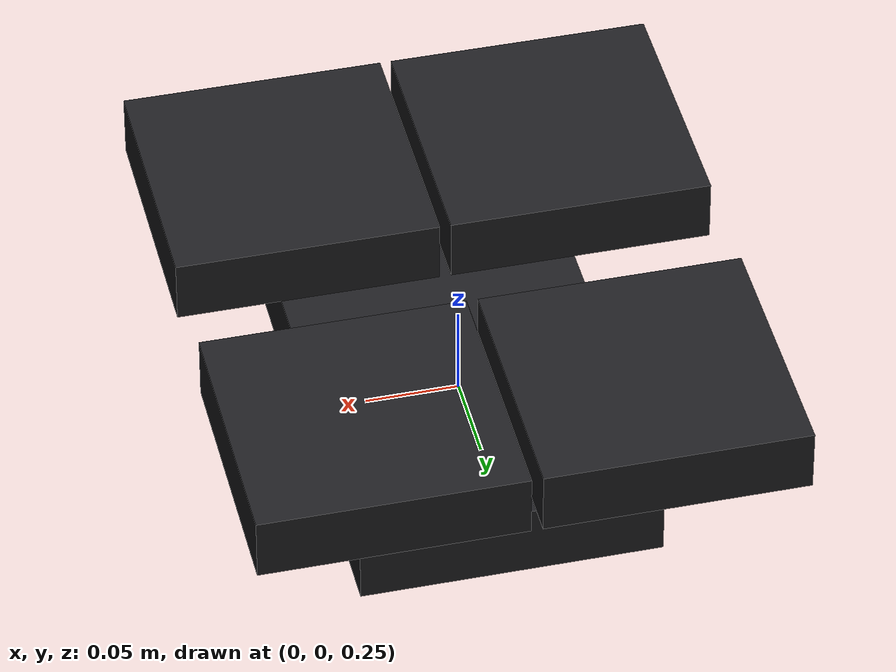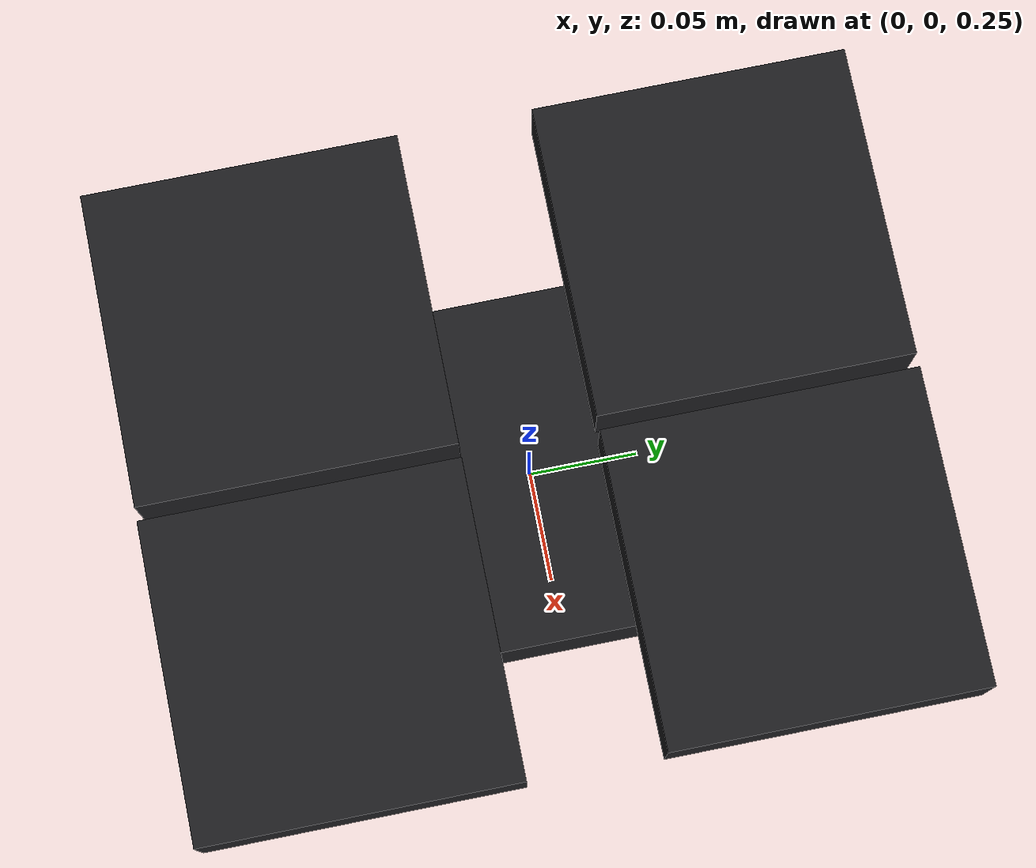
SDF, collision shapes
<?xml version="1.0" encoding="UTF-8"?>
<sdf version='1.9'>
  <!-- QAV-PRO Whoop 5": rectangular (not square-X). Motor plate 340 x 285 mm (Y x X). -->
  <!-- Ducts/props from model://kopis_x8_base, single deck. Body FLU: +X fwd, +Y left. -->
  <!-- Rotors at FLU (±0.073, ±0.100); CA FRD PY = -y. Order: 0=FR 1=RL 2=FL 3=RR. -->
  <model name='x4_base'>
    <pose>0 0 .24 0 0 0</pose>
    <self_collide>false</self_collide>
    <static>false</static>
    <link name="base_link">
      <inertial>
        <mass>1.0</mass>
        <inertia>
          <ixx>0.012</ixx>
          <ixy>0</ixy>
          <ixz>0</ixz>
          <iyy>0.007</iyy>
          <iyz>0</iyz>
          <izz>0.016</izz>
        </inertia>
      </inertial>
      <gravity>true</gravity>
      <velocity_decay/>
      <collision name="base_link_collision">
        <pose>0 0 .007 0 0 0</pose>
        <geometry>
          <box>
            <size>0.16 0.24 0.04</size>
          </box>
        </geometry>
        <surface>
          <contact>
            <ode>
              <min_depth>0.001</min_depth>
              <max_vel>0</max_vel>
            </ode>
          </contact>
          <friction>
            <ode/>
          </friction>
        </surface>
      </collision>
      <!-- Center bay: wider in Y (camera / Z-1 Mini). Inner opening ~0.12 x 0.18. -->
      <visual name="bay_front_rail">
        <pose>0.065 0 0.025 0 0 0</pose>
        <geometry><box><size>0.012 0.20 0.008</size></box></geometry>
        <material><diffuse>0.12 0.12 0.13</diffuse><specular>0.2 0.2 0.2</specular></material>
      </visual>
      <visual name="bay_rear_rail">
        <pose>-0.065 0 0.025 0 0 0</pose>
        <geometry><box><size>0.012 0.20 0.008</size></box></geometry>
        <material><diffuse>0.12 0.12 0.13</diffuse><specular>0.2 0.2 0.2</specular></material>
      </visual>
      <visual name="bay_left_rail">
        <pose>0 0.094 0.025 0 0 0</pose>
        <geometry><box><size>0.14 0.012 0.008</size></box></geometry>
        <material><diffuse>0.12 0.12 0.13</diffuse><specular>0.2 0.2 0.2</specular></material>
      </visual>
      <visual name="bay_right_rail">
        <pose>0 -0.094 0.025 0 0 0</pose>
        <geometry><box><size>0.14 0.012 0.008</size></box></geometry>
        <material><diffuse>0.12 0.12 0.13</diffuse><specular>0.2 0.2 0.2</specular></material>
      </visual>
      <visual name="fc_stack">
        <pose>-0.02 0 0.04 0 0 0</pose>
        <geometry><box><size>0.035 0.035 0.02</size></box></geometry>
        <material><diffuse>0.05 0.35 0.15</diffuse><specular>0.1 0.2 0.1</specular></material>
      </visual>
      <visual name="nose_marker">
        <pose>0.072 0 0.032 0 0 0</pose>
        <geometry>
          <box>
            <size>0.016 0.028 0.006</size>
          </box>
        </geometry>
        <material>
          <diffuse>1 0.2 0.1</diffuse>
          <specular>0.3 0.1 0.1</specular>
          <emissive>0.4 0 0</emissive>
        </material>
      </visual>
      <!-- 5" ducts on a 340x285 mm rectangle (Y wider). Scale 0.90 vs Kopis 156 mm OD. -->
      <visual name="duct_fl_visual">
        <pose>0.073 0.100 0.0788 3.14159 0 0</pose>
        <geometry>
          <mesh>
            <scale>0.00090 0.00090 0.00090</scale>
            <uri>model://kopis_x8_base/meshes/KopisX8_Cinelifter_5in_Duct.stl</uri>
          </mesh>
        </geometry>
        <material>
          <diffuse>0.45 0.45 0.5</diffuse>
          <specular>0.2 0.2 0.2</specular>
        </material>
      </visual>
      <collision name="duct_fl_collision">
        <pose>0.073 0.100 0.0788 3.14159 0 0</pose>
        <geometry><box><size>0.140 0.140 0.034</size></box></geometry>
        <surface><contact><ode><min_depth>0.001</min_depth><max_vel>0</max_vel></ode></contact><friction><ode/></friction></surface>
      </collision>
      <visual name="duct_fr_visual">
        <pose>0.073 -0.100 0.0788 3.14159 0 0</pose>
        <geometry>
          <mesh>
            <scale>0.00090 0.00090 0.00090</scale>
            <uri>model://kopis_x8_base/meshes/KopisX8_Cinelifter_5in_Duct.stl</uri>
          </mesh>
        </geometry>
        <material>
          <diffuse>0.45 0.45 0.5</diffuse>
          <specular>0.2 0.2 0.2</specular>
        </material>
      </visual>
      <collision name="duct_fr_collision">
        <pose>0.073 -0.100 0.0788 3.14159 0 0</pose>
        <geometry><box><size>0.140 0.140 0.034</size></box></geometry>
        <surface><contact><ode><min_depth>0.001</min_depth><max_vel>0</max_vel></ode></contact><friction><ode/></friction></surface>
      </collision>
      <visual name="duct_rl_visual">
        <pose>-0.073 0.100 0.0788 3.14159 0 0</pose>
        <geometry>
          <mesh>
            <scale>0.00090 0.00090 0.00090</scale>
            <uri>model://kopis_x8_base/meshes/KopisX8_Cinelifter_5in_Duct.stl</uri>
          </mesh>
        </geometry>
        <material>
          <diffuse>0.45 0.45 0.5</diffuse>
          <specular>0.2 0.2 0.2</specular>
        </material>
      </visual>
      <collision name="duct_rl_collision">
        <pose>-0.073 0.100 0.0788 3.14159 0 0</pose>
        <geometry><box><size>0.140 0.140 0.034</size></box></geometry>
        <surface><contact><ode><min_depth>0.001</min_depth><max_vel>0</max_vel></ode></contact><friction><ode/></friction></surface>
      </collision>
      <visual name="duct_rr_visual">
        <pose>-0.073 -0.100 0.0788 3.14159 0 0</pose>
        <geometry>
          <mesh>
            <scale>0.00090 0.00090 0.00090</scale>
            <uri>model://kopis_x8_base/meshes/KopisX8_Cinelifter_5in_Duct.stl</uri>
          </mesh>
        </geometry>
        <material>
          <diffuse>0.45 0.45 0.5</diffuse>
          <specular>0.2 0.2 0.2</specular>
        </material>
      </visual>
      <collision name="duct_rr_collision">
        <pose>-0.073 -0.100 0.0788 3.14159 0 0</pose>
        <geometry><box><size>0.140 0.140 0.034</size></box></geometry>
        <surface><contact><ode><min_depth>0.001</min_depth><max_vel>0</max_vel></ode></contact><friction><ode/></friction></surface>
      </collision>
      <sensor name="air_pressure_sensor" type="air_pressure">
        <always_on>1</always_on>
        <update_rate>50</update_rate>
        <air_pressure>
          <pressure>
            <noise type="gaussian">
              <mean>0</mean>
              <stddev>3</stddev>
            </noise>
          </pressure>
        </air_pressure>
      </sensor>
      <sensor name="magnetometer_sensor" type="magnetometer">
        <always_on>1</always_on>
        <update_rate>100</update_rate>
        <magnetometer>
          <x>
            <noise type="gaussian">
              <stddev>0.0001</stddev>
            </noise>
          </x>
          <y>
            <noise type="gaussian">
              <stddev>0.0001</stddev>
            </noise>
          </y>
          <z>
            <noise type="gaussian">
              <stddev>0.0001</stddev>
            </noise>
          </z>
        </magnetometer>
      </sensor>
      <sensor name="imu_sensor" type="imu">
        <always_on>1</always_on>
        <update_rate>250</update_rate>
        <imu>
          <angular_velocity>
            <x>
              <noise type="gaussian">
                <mean>0.0</mean>
                <stddev>0.0008726646</stddev>
              </noise>
            </x>
            <y>
              <noise type="gaussian">
                <mean>0.0</mean>
                <stddev>0.0008726646</stddev>
              </noise>
            </y>
            <z>
              <noise type="gaussian">
                <mean>0.0</mean>
                <stddev>0.0008726646</stddev>
              </noise>
            </z>
          </angular_velocity>
          <linear_acceleration>
            <x>
              <noise type="gaussian">
                <mean>0.0</mean>
                <stddev>0.00637</stddev>
              </noise>
            </x>
            <y>
              <noise type="gaussian">
                <mean>0.0</mean>
                <stddev>0.00637</stddev>
              </noise>
            </y>
            <z>
              <noise type="gaussian">
                <mean>0.0</mean>
                <stddev>0.00686</stddev>
              </noise>
            </z>
          </linear_acceleration>
        </imu>
      </sensor>
      <sensor name="navsat_sensor" type="navsat">
        <always_on>1</always_on>
        <update_rate>30</update_rate>
      </sensor>
    </link>
    <!-- Quad X, one rotor per arm. Names/order match x500: 0=FR 1=RL 2=FL 3=RR (FLU poses). -->
    <link name="rotor_0">
      <gravity>true</gravity>
      <self_collide>false</self_collide>
      <velocity_decay/>
      <pose>0.073 -0.100 0.0788 0 0 0</pose>
      <inertial>
        <mass>0.016076923076923075</mass>
        <inertia>
          <ixx>3.8464910483993325e-07</ixx>
          <ixy>0</ixy>
          <ixz>0</ixz>
          <iyy>2.6115851691700804e-05</iyy>
          <iyz>0</iyz>
          <izz>2.649858234714004e-05</izz>
        </inertia>
      </inertial>
      <visual name="rotor_0_visual">
        <pose>0 0 0 -1.5708 0 0</pose>
        <geometry>
          <mesh>
            <scale>0.001 0.001 0.001</scale>
            <uri>model://kopis_x8_base/meshes/Propeller_5_inch.stl</uri>
          </mesh>
        </geometry>
        <material>
          <script>
            <name>Gazebo/DarkGrey</name>
            <uri>file://media/materials/scripts/gazebo.material</uri>
          </script>
        </material>
      </visual>
      <collision name="rotor_0_collision">
        <pose>0 0 0 0 0 0</pose>
        <geometry>
          <box>
            <size>0.127 0.02 0.001</size>
          </box>
        </geometry>
        <surface>
          <contact><ode><min_depth>0.001</min_depth><max_vel>0</max_vel></ode></contact>
          <friction><ode/></friction>
        </surface>
      </collision>
    </link>
    <joint name="rotor_0_joint" type="revolute">
      <parent>base_link</parent>
      <child>rotor_0</child>
      <axis>
        <xyz>0 0 1</xyz>
        <limit><lower>-1e+16</lower><upper>1e+16</upper></limit>
        <dynamics><spring_reference>0</spring_reference><spring_stiffness>0</spring_stiffness></dynamics>
      </axis>
    </joint>
    <link name="rotor_1">
      <gravity>true</gravity>
      <self_collide>false</self_collide>
      <velocity_decay/>
      <pose>-0.073 0.100 0.0788 0 0 0</pose>
      <inertial>
        <mass>0.016076923076923075</mass>
        <inertia>
          <ixx>3.8464910483993325e-07</ixx>
          <ixy>0</ixy>
          <ixz>0</ixz>
          <iyy>2.6115851691700804e-05</iyy>
          <iyz>0</iyz>
          <izz>2.649858234714004e-05</izz>
        </inertia>
      </inertial>
      <visual name="rotor_1_visual">
        <pose>0 0 0 -1.5708 0 0</pose>
        <geometry>
          <mesh>
            <scale>0.001 0.001 0.001</scale>
            <uri>model://kopis_x8_base/meshes/Propeller_5_inch.stl</uri>
          </mesh>
        </geometry>
        <material>
          <script><name>Gazebo/DarkGrey</name><uri>file://media/materials/scripts/gazebo.material</uri></script>
        </material>
      </visual>
      <collision name="rotor_1_collision">
        <pose>0 0 0 0 0 0</pose>
        <geometry><box><size>0.127 0.02 0.001</size></box></geometry>
        <surface><contact><ode><min_depth>0.001</min_depth><max_vel>0</max_vel></ode></contact><friction><ode/></friction></surface>
      </collision>
    </link>
    <joint name="rotor_1_joint" type="revolute">
      <parent>base_link</parent>
      <child>rotor_1</child>
      <axis><xyz>0 0 1</xyz><limit><lower>-1e+16</lower><upper>1e+16</upper></limit><dynamics><spring_reference>0</spring_reference><spring_stiffness>0</spring_stiffness></dynamics></axis>
    </joint>
    <link name="rotor_2">
      <gravity>true</gravity>
      <self_collide>false</self_collide>
      <velocity_decay/>
      <pose>0.073 0.100 0.0788 0 0 0</pose>
      <inertial>
        <mass>0.016076923076923075</mass>
        <inertia>
          <ixx>3.8464910483993325e-07</ixx>
          <ixy>0</ixy>
          <ixz>0</ixz>
          <iyy>2.6115851691700804e-05</iyy>
          <iyz>0</iyz>
          <izz>2.649858234714004e-05</izz>
        </inertia>
      </inertial>
      <visual name="rotor_2_visual">
        <pose>0 0 0 -1.5708 0 0</pose>
        <geometry>
          <mesh>
            <scale>0.001 0.001 0.001</scale>
            <uri>model://kopis_x8_base/meshes/Propeller_5_inch.stl</uri>
          </mesh>
        </geometry>
        <material>
          <script><name>Gazebo/DarkGrey</name><uri>file://media/materials/scripts/gazebo.material</uri></script>
        </material>
      </visual>
      <collision name="rotor_2_collision">
        <pose>0 0 0 0 0 0</pose>
        <geometry><box><size>0.127 0.02 0.001</size></box></geometry>
        <surface><contact><ode><min_depth>0.001</min_depth><max_vel>0</max_vel></ode></contact><friction><ode/></friction></surface>
      </collision>
    </link>
    <joint name="rotor_2_joint" type="revolute">
      <parent>base_link</parent>
      <child>rotor_2</child>
      <axis><xyz>0 0 1</xyz><limit><lower>-1e+16</lower><upper>1e+16</upper></limit><dynamics><spring_reference>0</spring_reference><spring_stiffness>0</spring_stiffness></dynamics></axis>
    </joint>
    <link name="rotor_3">
      <gravity>true</gravity>
      <self_collide>false</self_collide>
      <velocity_decay/>
      <pose>-0.073 -0.100 0.0788 0 0 0</pose>
      <inertial>
        <mass>0.016076923076923075</mass>
        <inertia>
          <ixx>3.8464910483993325e-07</ixx>
          <ixy>0</ixy>
          <ixz>0</ixz>
          <iyy>2.6115851691700804e-05</iyy>
          <iyz>0</iyz>
          <izz>2.649858234714004e-05</izz>
        </inertia>
      </inertial>
      <visual name="rotor_3_visual">
        <pose>0 0 0 -1.5708 0 0</pose>
        <geometry>
          <mesh>
            <scale>0.001 0.001 0.001</scale>
            <uri>model://kopis_x8_base/meshes/Propeller_5_inch.stl</uri>
          </mesh>
        </geometry>
        <material>
          <script><name>Gazebo/DarkGrey</name><uri>file://media/materials/scripts/gazebo.material</uri></script>
        </material>
      </visual>
      <collision name="rotor_3_collision">
        <pose>0 0 0 0 0 0</pose>
        <geometry><box><size>0.127 0.02 0.001</size></box></geometry>
        <surface><contact><ode><min_depth>0.001</min_depth><max_vel>0</max_vel></ode></contact><friction><ode/></friction></surface>
      </collision>
    </link>
    <joint name="rotor_3_joint" type="revolute">
      <parent>base_link</parent>
      <child>rotor_3</child>
      <axis><xyz>0 0 1</xyz><limit><lower>-1e+16</lower><upper>1e+16</upper></limit><dynamics><spring_reference>0</spring_reference><spring_stiffness>0</spring_stiffness></dynamics></axis>
    </joint>
  </model>
</sdf>
